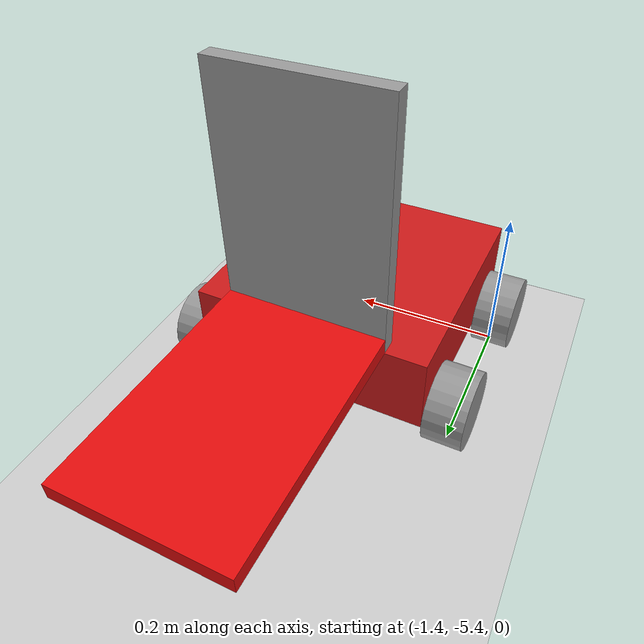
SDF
<sdf version="1.6">
 <world name="default">
  <model name="ground_plane">
   <static>1</static>
   <link name="link">
    <collision name="collision">
     <geometry><plane><normal>0 0 1</normal><size>100 100</size></plane></geometry>
     <surface><friction><ode><mu>100</mu><mu2>50</mu2></ode></friction></surface>
    </collision>
    <visual name="visual">
     <cast_shadows>0</cast_shadows>
     <geometry><plane><normal>0 0 1</normal><size>100 100</size></plane></geometry>
     <material>
      <script><uri>file://media/materials/scripts/gazebo.material</uri><name>Gazebo/Grey</name></script>
     </material>
    </visual>
   </link>
  </model>
  <model name="StoolMover_0">
   <link name="link_0">
    <pose>0 -0.062857 -0.008571 0 -0 0</pose>
    <inertial>
     <mass>1</mass>
     <inertia>
      <ixx>0.166667</ixx>
      <ixy>0</ixy>
      <ixz>0</ixz>
      <iyy>0.166667</iyy>
      <iyz>0</iyz>
      <izz>0.166667</izz>
     </inertia>
    </inertial>
    <visual name="visual">
     <geometry><box><size>0.3 0.3 0.1</size></box></geometry>
     <material>
      <lighting>1</lighting>
      <script><uri>file://media/materials/scripts/gazebo.material</uri><name>Gazebo/Grey</name></script>
      <shader type="pixel"><normal_map>__default__</normal_map></shader>
      <ambient>0.8 0.1 0.1 1</ambient>
      <diffuse>0.7 0.7 0.7 1</diffuse>
      <specular>0.01 0.01 0.01 1</specular>
      <emissive>0 0 0 1</emissive>
     </material>
    </visual>
    <collision name="collision">
     <geometry><box><size>0.3 0.3 0.1</size></box></geometry>
     <surface>
      <friction>
       <ode><mu>1</mu><mu2>1</mu2><fdir1>0 0 0</fdir1><slip1>0</slip1><slip2>0</slip2></ode>
       <torsional>
        <coefficient>1</coefficient>
        <patch_radius>0</patch_radius>
        <surface_radius>0</surface_radius>
        <use_patch_radius>1</use_patch_radius>
        <ode><slip>0</slip></ode>
       </torsional>
      </friction>
      <bounce><restitution_coefficient>0</restitution_coefficient><threshold>1e+06</threshold></bounce>
      <contact>
       <collide_without_contact>0</collide_without_contact>
       <collide_without_contact_bitmask>1</collide_without_contact_bitmask>
       <collide_bitmask>1</collide_bitmask>
       <ode>
        <soft_cfm>0</soft_cfm>
        <soft_erp>0.2</soft_erp>
        <kp>1e+13</kp>
        <kd>1</kd>
        <max_vel>0.01</max_vel>
        <min_depth>0</min_depth>
       </ode>
       <bullet>
        <split_impulse>1</split_impulse>
        <split_impulse_penetration_threshold>-0.01</split_impulse_penetration_threshold>
        <soft_cfm>0</soft_cfm>
        <soft_erp>0.2</soft_erp>
        <kp>1e+13</kp>
        <kd>1</kd>
       </bullet>
      </contact>
     </surface>
    </collision>
   </link>
   <link name="link_1">
    <pose>0.175 0.037143 -0.058571 0 -0 0</pose>
    <inertial>
     <mass>1</mass>
     <inertia><ixx>0.145833</ixx><ixy>0</ixy><ixz>0</ixz><iyy>0.145833</iyy><iyz>0</iyz><izz>0.125</izz></inertia>
    </inertial>
    <visual name="visual">
     <pose>0 0 0 -3.14159 1.57079 -3.14159</pose>
     <geometry><cylinder><radius>0.05</radius><length>0.05</length></cylinder></geometry>
     <material>
      <lighting>1</lighting>
      <script><uri>file://media/materials/scripts/gazebo.material</uri><name>Gazebo/Grey</name></script>
      <shader type="pixel"><normal_map>__default__</normal_map></shader>
      <ambient>0.3 0.3 0.3 1</ambient>
      <diffuse>0.7 0.7 0.7 1</diffuse>
      <specular>0.01 0.01 0.01 1</specular>
      <emissive>0 0 0 1</emissive>
     </material>
    </visual>
    <collision name="collision">
     <pose>0 0 0 -3.14159 1.57079 -3.14159</pose>
     <geometry><cylinder><radius>0.05</radius><length>0.05</length></cylinder></geometry>
     <surface>
      <friction>
       <ode><mu>1</mu><mu2>1</mu2><fdir1>0 0 0</fdir1><slip1>0</slip1><slip2>0</slip2></ode>
       <torsional>
        <coefficient>1</coefficient>
        <patch_radius>0</patch_radius>
        <surface_radius>0</surface_radius>
        <use_patch_radius>1</use_patch_radius>
        <ode><slip>0</slip></ode>
       </torsional>
      </friction>
      <bounce><restitution_coefficient>0</restitution_coefficient><threshold>1e+06</threshold></bounce>
      <contact>
       <collide_without_contact>0</collide_without_contact>
       <collide_without_contact_bitmask>1</collide_without_contact_bitmask>
       <collide_bitmask>1</collide_bitmask>
       <ode>
        <soft_cfm>0</soft_cfm>
        <soft_erp>0.2</soft_erp>
        <kp>1e+13</kp>
        <kd>1</kd>
        <max_vel>0.01</max_vel>
        <min_depth>0</min_depth>
       </ode>
       <bullet>
        <split_impulse>1</split_impulse>
        <split_impulse_penetration_threshold>-0.01</split_impulse_penetration_threshold>
        <soft_cfm>0</soft_cfm>
        <soft_erp>0.2</soft_erp>
        <kp>1e+13</kp>
        <kd>1</kd>
       </bullet>
      </contact>
     </surface>
    </collision>
   </link>
   <link name="link_1_clone">
    <pose>-0.175 0.037143 -0.058571 0 -0 0</pose>
    <inertial>
     <mass>1</mass>
     <inertia><ixx>0.145833</ixx><ixy>0</ixy><ixz>0</ixz><iyy>0.145833</iyy><iyz>0</iyz><izz>0.125</izz></inertia>
    </inertial>
    <visual name="visual">
     <pose>0 0 0 3.14159 1.57079 3.14159</pose>
     <geometry><cylinder><radius>0.05</radius><length>0.05</length></cylinder></geometry>
     <material>
      <lighting>1</lighting>
      <script><uri>file://media/materials/scripts/gazebo.material</uri><name>Gazebo/Grey</name></script>
      <shader type="pixel"><normal_map>__default__</normal_map></shader>
      <ambient>0.3 0.3 0.3 1</ambient>
      <diffuse>0.7 0.7 0.7 1</diffuse>
      <specular>0.01 0.01 0.01 1</specular>
      <emissive>0 0 0 1</emissive>
     </material>
    </visual>
    <collision name="collision">
     <pose>0 0 0 3.14159 1.57079 3.14159</pose>
     <geometry><cylinder><radius>0.05</radius><length>0.05</length></cylinder></geometry>
     <surface>
      <friction>
       <ode><mu>1</mu><mu2>1</mu2><fdir1>0 0 0</fdir1><slip1>0</slip1><slip2>0</slip2></ode>
       <torsional>
        <coefficient>1</coefficient>
        <patch_radius>0</patch_radius>
        <surface_radius>0</surface_radius>
        <use_patch_radius>1</use_patch_radius>
        <ode><slip>0</slip></ode>
       </torsional>
      </friction>
      <bounce><restitution_coefficient>0</restitution_coefficient><threshold>1e+06</threshold></bounce>
      <contact>
       <collide_without_contact>0</collide_without_contact>
       <collide_without_contact_bitmask>1</collide_without_contact_bitmask>
       <collide_bitmask>1</collide_bitmask>
       <ode>
        <soft_cfm>0</soft_cfm>
        <soft_erp>0.2</soft_erp>
        <kp>1e+13</kp>
        <kd>1</kd>
        <max_vel>0.01</max_vel>
        <min_depth>0</min_depth>
       </ode>
       <bullet>
        <split_impulse>1</split_impulse>
        <split_impulse_penetration_threshold>-0.01</split_impulse_penetration_threshold>
        <soft_cfm>0</soft_cfm>
        <soft_erp>0.2</soft_erp>
        <kp>1e+13</kp>
        <kd>1</kd>
       </bullet>
      </contact>
     </surface>
    </collision>
   </link>
   <link name="link_1_clone_0">
    <pose>-0.175 -0.162857 -0.058571 0 -0 0</pose>
    <inertial>
     <mass>1</mass>
     <inertia><ixx>0.145833</ixx><ixy>0</ixy><ixz>0</ixz><iyy>0.145833</iyy><iyz>0</iyz><izz>0.125</izz></inertia>
    </inertial>
    <visual name="visual">
     <pose>0 0 0 3.14159 1.57079 3.14159</pose>
     <geometry><cylinder><radius>0.05</radius><length>0.05</length></cylinder></geometry>
     <material>
      <lighting>1</lighting>
      <script><uri>file://media/materials/scripts/gazebo.material</uri><name>Gazebo/Grey</name></script>
      <shader type="pixel"><normal_map>__default__</normal_map></shader>
      <ambient>0.3 0.3 0.3 1</ambient>
      <diffuse>0.7 0.7 0.7 1</diffuse>
      <specular>0.01 0.01 0.01 1</specular>
      <emissive>0 0 0 1</emissive>
     </material>
    </visual>
    <collision name="collision">
     <pose>0 0 0 3.14159 1.57079 3.14159</pose>
     <geometry><cylinder><radius>0.05</radius><length>0.05</length></cylinder></geometry>
     <surface>
      <friction>
       <ode><mu>1</mu><mu2>1</mu2><fdir1>0 0 0</fdir1><slip1>0</slip1><slip2>0</slip2></ode>
       <torsional>
        <coefficient>1</coefficient>
        <patch_radius>0</patch_radius>
        <surface_radius>0</surface_radius>
        <use_patch_radius>1</use_patch_radius>
        <ode><slip>0</slip></ode>
       </torsional>
      </friction>
      <bounce><restitution_coefficient>0</restitution_coefficient><threshold>1e+06</threshold></bounce>
      <contact>
       <collide_without_contact>0</collide_without_contact>
       <collide_without_contact_bitmask>1</collide_without_contact_bitmask>
       <collide_bitmask>1</collide_bitmask>
       <ode>
        <soft_cfm>0</soft_cfm>
        <soft_erp>0.2</soft_erp>
        <kp>1e+13</kp>
        <kd>1</kd>
        <max_vel>0.01</max_vel>
        <min_depth>0</min_depth>
       </ode>
       <bullet>
        <split_impulse>1</split_impulse>
        <split_impulse_penetration_threshold>-0.01</split_impulse_penetration_threshold>
        <soft_cfm>0</soft_cfm>
        <soft_erp>0.2</soft_erp>
        <kp>1e+13</kp>
        <kd>1</kd>
       </bullet>
      </contact>
     </surface>
    </collision>
   </link>
   <link name="link_1_clone_1">
    <pose>0.175 -0.162857 -0.058571 0 -0 0</pose>
    <inertial>
     <mass>1</mass>
     <inertia><ixx>0.145833</ixx><ixy>0</ixy><ixz>0</ixz><iyy>0.145833</iyy><iyz>0</iyz><izz>0.125</izz></inertia>
    </inertial>
    <visual name="visual">
     <pose>0 0 0 3.14159 1.57079 3.14159</pose>
     <geometry><cylinder><radius>0.05</radius><length>0.05</length></cylinder></geometry>
     <material>
      <lighting>1</lighting>
      <script><uri>file://media/materials/scripts/gazebo.material</uri><name>Gazebo/Grey</name></script>
      <shader type="pixel"><normal_map>__default__</normal_map></shader>
      <ambient>0.3 0.3 0.3 1</ambient>
      <diffuse>0.7 0.7 0.7 1</diffuse>
      <specular>0.01 0.01 0.01 1</specular>
      <emissive>0 0 0 1</emissive>
     </material>
    </visual>
    <collision name="collision">
     <pose>0 0 0 3.14159 1.57079 3.14159</pose>
     <geometry><cylinder><radius>0.05</radius><length>0.05</length></cylinder></geometry>
     <surface>
      <friction>
       <ode><mu>1</mu><mu2>1</mu2><fdir1>0 0 0</fdir1><slip1>0</slip1><slip2>0</slip2></ode>
       <torsional>
        <coefficient>1</coefficient>
        <patch_radius>0</patch_radius>
        <surface_radius>0</surface_radius>
        <use_patch_radius>1</use_patch_radius>
        <ode><slip>0</slip></ode>
       </torsional>
      </friction>
      <bounce><restitution_coefficient>0</restitution_coefficient><threshold>1e+06</threshold></bounce>
      <contact>
       <collide_without_contact>0</collide_without_contact>
       <collide_without_contact_bitmask>1</collide_without_contact_bitmask>
       <collide_bitmask>1</collide_bitmask>
       <ode>
        <soft_cfm>0</soft_cfm>
        <soft_erp>0.2</soft_erp>
        <kp>1e+13</kp>
        <kd>1</kd>
        <max_vel>0.01</max_vel>
        <min_depth>0</min_depth>
       </ode>
       <bullet>
        <split_impulse>1</split_impulse>
        <split_impulse_penetration_threshold>-0.01</split_impulse_penetration_threshold>
        <soft_cfm>0</soft_cfm>
        <soft_erp>0.2</soft_erp>
        <kp>1e+13</kp>
        <kd>1</kd>
       </bullet>
      </contact>
     </surface>
    </collision>
   </link>
   <link name="link_2">
    <pose>0 0.077143 0.191429 0 -0 0</pose>
    <inertial>
     <mass>1</mass>
     <inertia>
      <ixx>0.166667</ixx>
      <ixy>0</ixy>
      <ixz>0</ixz>
      <iyy>0.166667</iyy>
      <iyz>0</iyz>
      <izz>0.166667</izz>
     </inertia>
    </inertial>
    <visual name="visual">
     <geometry><box><size>0.2 0.02 0.3</size></box></geometry>
     <material>
      <lighting>1</lighting>
      <script><uri>file://media/materials/scripts/gazebo.material</uri><name>Gazebo/Grey</name></script>
      <shader type="pixel"><normal_map>__default__</normal_map></shader>
      <ambient>0.3 0.3 0.3 1</ambient>
      <diffuse>0.7 0.7 0.7 1</diffuse>
      <specular>0.01 0.01 0.01 1</specular>
      <emissive>0 0 0 1</emissive>
     </material>
    </visual>
    <collision name="collision">
     <geometry><box><size>0.2 0.02 0.3</size></box></geometry>
     <surface>
      <friction>
       <ode><mu>1</mu><mu2>1</mu2><fdir1>0 0 0</fdir1><slip1>0</slip1><slip2>0</slip2></ode>
       <torsional>
        <coefficient>1</coefficient>
        <patch_radius>0</patch_radius>
        <surface_radius>0</surface_radius>
        <use_patch_radius>1</use_patch_radius>
        <ode><slip>0</slip></ode>
       </torsional>
      </friction>
      <bounce><restitution_coefficient>0</restitution_coefficient><threshold>1e+06</threshold></bounce>
      <contact>
       <collide_without_contact>0</collide_without_contact>
       <collide_without_contact_bitmask>1</collide_without_contact_bitmask>
       <collide_bitmask>1</collide_bitmask>
       <ode>
        <soft_cfm>0</soft_cfm>
        <soft_erp>0.2</soft_erp>
        <kp>1e+13</kp>
        <kd>1</kd>
        <max_vel>0.01</max_vel>
        <min_depth>0</min_depth>
       </ode>
       <bullet>
        <split_impulse>1</split_impulse>
        <split_impulse_penetration_threshold>-0.01</split_impulse_penetration_threshold>
        <soft_cfm>0</soft_cfm>
        <soft_erp>0.2</soft_erp>
        <kp>1e+13</kp>
        <kd>1</kd>
       </bullet>
      </contact>
     </surface>
    </collision>
   </link>
   <link name="link_2_clone">
    <pose>0 0.237143 0.051429 1.5708 -0 0</pose>
    <inertial>
     <mass>1</mass>
     <inertia>
      <ixx>0.166667</ixx>
      <ixy>0</ixy>
      <ixz>0</ixz>
      <iyy>0.166667</iyy>
      <iyz>0</iyz>
      <izz>0.166667</izz>
     </inertia>
    </inertial>
    <visual name="visual">
     <geometry><box><size>0.2 0.02 0.3</size></box></geometry>
     <material>
      <lighting>1</lighting>
      <script><uri>file://media/materials/scripts/gazebo.material</uri><name>Gazebo/Grey</name></script>
      <shader type="pixel"><normal_map>__default__</normal_map></shader>
      <ambient>0.9 0.05 0.05 1</ambient>
      <diffuse>0.7 0.7 0.7 1</diffuse>
      <specular>0.01 0.01 0.01 1</specular>
      <emissive>0 0 0 1</emissive>
     </material>
    </visual>
    <collision name="collision">
     <geometry><box><size>0.2 0.02 0.3</size></box></geometry>
     <surface>
      <friction>
       <ode><mu>1</mu><mu2>1</mu2><fdir1>0 0 0</fdir1><slip1>0</slip1><slip2>0</slip2></ode>
       <torsional>
        <coefficient>1</coefficient>
        <patch_radius>0</patch_radius>
        <surface_radius>0</surface_radius>
        <use_patch_radius>1</use_patch_radius>
        <ode><slip>0</slip></ode>
       </torsional>
      </friction>
      <bounce><restitution_coefficient>0</restitution_coefficient><threshold>1e+06</threshold></bounce>
      <contact>
       <collide_without_contact>0</collide_without_contact>
       <collide_without_contact_bitmask>1</collide_without_contact_bitmask>
       <collide_bitmask>1</collide_bitmask>
       <ode>
        <soft_cfm>0</soft_cfm>
        <soft_erp>0.2</soft_erp>
        <kp>1e+13</kp>
        <kd>1</kd>
        <max_vel>0.01</max_vel>
        <min_depth>0</min_depth>
       </ode>
       <bullet>
        <split_impulse>1</split_impulse>
        <split_impulse_penetration_threshold>-0.01</split_impulse_penetration_threshold>
        <soft_cfm>0</soft_cfm>
        <soft_erp>0.2</soft_erp>
        <kp>1e+13</kp>
        <kd>1</kd>
       </bullet>
      </contact>
     </surface>
    </collision>
   </link>
   <joint name="link_0_JOINT_1" type="revolute">
    <parent>link_0</parent>
    <child>link_1</child>
    <axis>
     <xyz>1 0 0</xyz>
     <use_parent_model_frame>0</use_parent_model_frame>
     <limit>
      <lower>-1.79769e+308</lower>
      <upper>1.79769e+308</upper>
      <effort>-1</effort>
      <velocity>-1</velocity>
     </limit>
     <dynamics>
      <spring_reference>0</spring_reference>
      <spring_stiffness>0</spring_stiffness>
      <damping>0</damping>
      <friction>0</friction>
     </dynamics>
    </axis>
    <physics>
     <ode><limit><cfm>0</cfm><erp>0.2</erp></limit><suspension><cfm>0</cfm><erp>0.2</erp></suspension></ode>
    </physics>
   </joint>
   <joint name="link_0_JOINT_2" type="fixed">
    <parent>link_0</parent>
    <child>link_2</child>
    <physics>
     <ode><limit><cfm>0</cfm><erp>0.2</erp></limit><suspension><cfm>0</cfm><erp>0.2</erp></suspension></ode>
    </physics>
   </joint>
   <joint name="link_0_JOINT_4" type="revolute">
    <parent>link_0</parent>
    <child>link_1_clone_1</child>
    <axis>
     <xyz>1 0 0</xyz>
     <use_parent_model_frame>0</use_parent_model_frame>
     <limit>
      <lower>-1.79769e+308</lower>
      <upper>1.79769e+308</upper>
      <effort>-1</effort>
      <velocity>-1</velocity>
     </limit>
     <dynamics>
      <spring_reference>0</spring_reference>
      <spring_stiffness>0</spring_stiffness>
      <damping>0</damping>
      <friction>0</friction>
     </dynamics>
    </axis>
    <physics>
     <ode><limit><cfm>0</cfm><erp>0.2</erp></limit><suspension><cfm>0</cfm><erp>0.2</erp></suspension></ode>
    </physics>
   </joint>
   <joint name="link_0_JOINT_5" type="revolute">
    <parent>link_0</parent>
    <child>link_1_clone</child>
    <axis>
     <xyz>1 0 0</xyz>
     <use_parent_model_frame>0</use_parent_model_frame>
     <limit>
      <lower>-1.79769e+308</lower>
      <upper>1.79769e+308</upper>
      <effort>-1</effort>
      <velocity>-1</velocity>
     </limit>
     <dynamics>
      <spring_reference>0</spring_reference>
      <spring_stiffness>0</spring_stiffness>
      <damping>0</damping>
      <friction>0</friction>
     </dynamics>
    </axis>
    <physics>
     <ode><limit><cfm>0</cfm><erp>0.2</erp></limit><suspension><cfm>0</cfm><erp>0.2</erp></suspension></ode>
    </physics>
   </joint>
   <joint name="link_0_JOINT_6" type="revolute">
    <parent>link_0</parent>
    <child>link_1_clone_0</child>
    <axis>
     <xyz>1 0 0</xyz>
     <use_parent_model_frame>0</use_parent_model_frame>
     <limit>
      <lower>-1.79769e+308</lower>
      <upper>1.79769e+308</upper>
      <effort>-1</effort>
      <velocity>-1</velocity>
     </limit>
     <dynamics>
      <spring_reference>0</spring_reference>
      <spring_stiffness>0</spring_stiffness>
      <damping>0</damping>
      <friction>0</friction>
     </dynamics>
    </axis>
    <physics>
     <ode><limit><cfm>0</cfm><erp>0.2</erp></limit><suspension><cfm>0</cfm><erp>0.2</erp></suspension></ode>
    </physics>
   </joint>
   <joint name="link_2_JOINT_3" type="prismatic">
    <parent>link_2</parent>
    <child>link_2_clone</child>
    <axis>
     <xyz>0 1 0</xyz>
     <use_parent_model_frame>0</use_parent_model_frame>
     <limit><lower>0</lower><upper>0.35</upper><effort>10</effort><velocity>1</velocity></limit>
     <dynamics>
      <spring_reference>0</spring_reference>
      <spring_stiffness>0</spring_stiffness>
      <damping>0</damping>
      <friction>0</friction>
     </dynamics>
    </axis>
    <physics>
     <ode><limit><cfm>0</cfm><erp>0.2</erp></limit><suspension><cfm>0</cfm><erp>0.2</erp></suspension></ode>
    </physics>
   </joint>
   <static>0</static>
   <pose>-1.2271 -5.24881 0.108612 -7e-06 -1e-06 -0.019548</pose>
  </model>
 </world>
</sdf>
